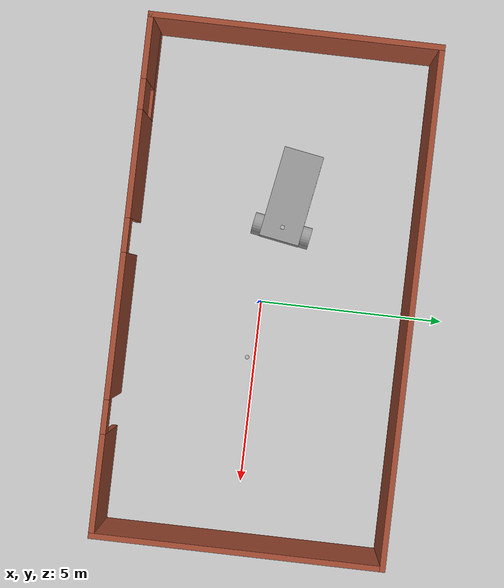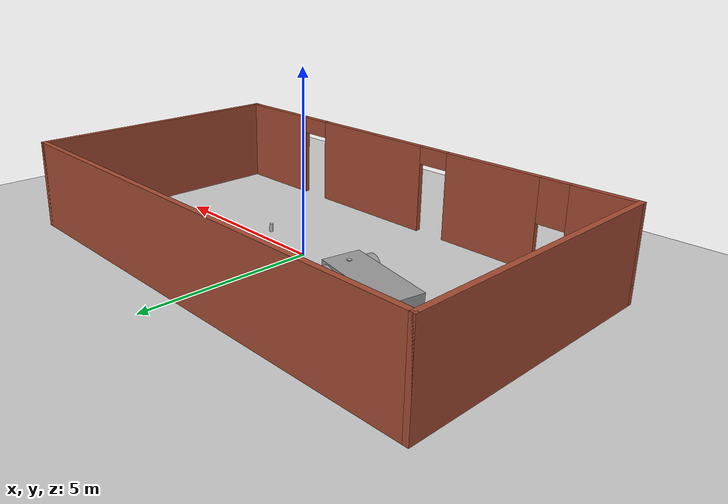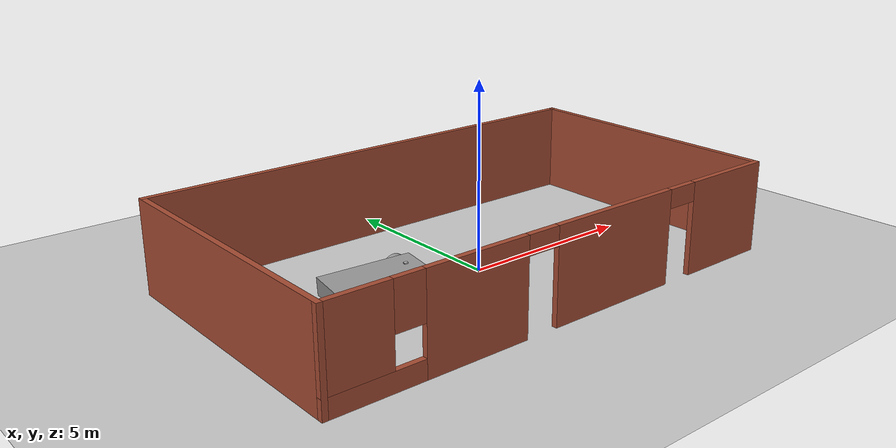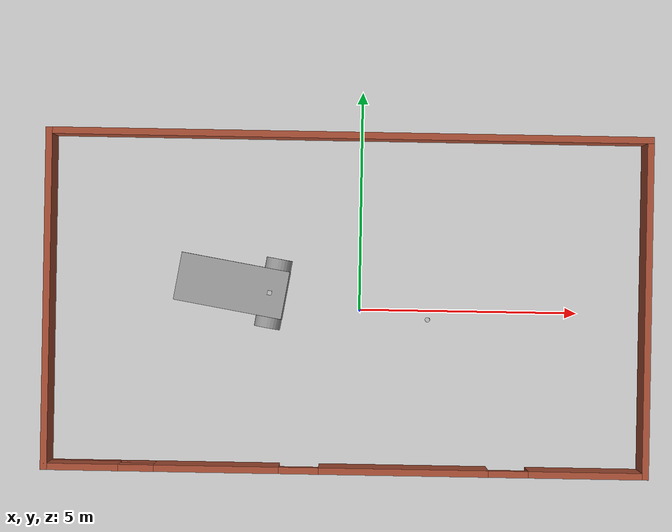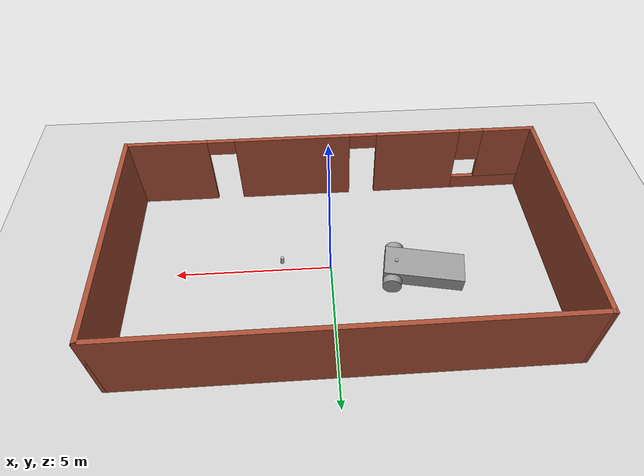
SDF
<sdf version="1.6">
 <world name="default">
  <light name="sun" type="directional">
   <pose>0 0 10 0 -0 0</pose>
   <diffuse>0.8 0.8 0.8 1</diffuse>
   <specular>0.2 0.2 0.2 1</specular>
   <attenuation>
    <range>1000</range>
    <constant>0.9</constant>
    <linear>0.01</linear>
    <quadratic>0.001</quadratic>
   </attenuation>
   <direction>-0.5 0.1 -0.9</direction>
  </light>
  <model name="ground_plane">
   <static>1</static>
   <link name="link">
    <collision name="collision">
     <geometry><plane><normal>0 0 1</normal><size>100 100</size></plane></geometry>
     <surface>
      <contact><collide_bitmask>65535</collide_bitmask></contact>
      <friction><ode><mu>100</mu><mu2>50</mu2></ode></friction>
     </surface>
    </collision>
    <visual name="visual">
     <cast_shadows>0</cast_shadows>
     <geometry><plane><normal>0 0 1</normal><size>100 100</size></plane></geometry>
     <material>
      <script><uri>file://media/materials/scripts/gazebo.material</uri><name>Gazebo/Grey</name></script>
     </material>
    </visual>
   </link>
  </model>
  <gravity>0 0 -9.8</gravity>
  <magnetic_field>6e-06 2.3e-05 -4.2e-05</magnetic_field>
  <atmosphere type="adiabatic"/>
  <physics name="default_physics" default="0" type="ode">
   <max_step_size>0.001</max_step_size>
   <real_time_factor>1</real_time_factor>
   <real_time_update_rate>1000</real_time_update_rate>
  </physics>
  <scene><ambient>0.4 0.4 0.4 1</ambient><background>0.7 0.7 0.7 1</background><shadows>1</shadows></scene>
  <audio><device>default</device></audio>
  <spherical_coordinates>
   <surface_model>EARTH_WGS84</surface_model>
   <latitude_deg>0</latitude_deg>
   <longitude_deg>0</longitude_deg>
   <elevation>0</elevation>
   <heading_deg>0</heading_deg>
  </spherical_coordinates>
  <model name="Hen">
   <model name="Chasis">
    <link name="link_0">
     <inertial>
      <mass>1.32396</mass>
      <inertia>
       <ixx>0.160005</ixx>
       <ixy>0</ixy>
       <ixz>0</ixz>
       <iyy>0.727809</iyy>
       <iyz>0</iyz>
       <izz>0.838287</izz>
      </inertia>
     </inertial>
     <pose>-0.351207 -0.000111 -0.12479 0 -0 0</pose>
     <visual name="visual">
      <geometry><box><size>2.52432 1.10715 0.473758</size></box></geometry>
      <material>
       <lighting>1</lighting>
       <script><uri>file://media/materials/scripts/gazebo.material</uri><name>Gazebo/Grey</name></script>
       <shader type="vertex"><normal_map>__default__</normal_map></shader>
       <ambient>0.3 0.3 0.3 1</ambient>
       <diffuse>0.7 0.7 0.7 1</diffuse>
       <specular>0.01 0.01 0.01 1</specular>
       <emissive>0 0 0 1</emissive>
      </material>
     </visual>
     <collision name="collision">
      <geometry><box><size>2.52432 1.10715 0.473758</size></box></geometry>
      <surface>
       <friction>
        <ode><mu>1</mu><mu2>1</mu2><fdir1>0 0 0</fdir1><slip1>0</slip1><slip2>0</slip2></ode>
        <torsional>
         <coefficient>1</coefficient>
         <patch_radius>0</patch_radius>
         <surface_radius>0</surface_radius>
         <use_patch_radius>1</use_patch_radius>
         <ode><slip>0</slip></ode>
        </torsional>
       </friction>
       <bounce><restitution_coefficient>0</restitution_coefficient><threshold>1e+06</threshold></bounce>
       <contact>
        <collide_without_contact>0</collide_without_contact>
        <collide_without_contact_bitmask>1</collide_without_contact_bitmask>
        <collide_bitmask>1</collide_bitmask>
        <ode>
         <soft_cfm>0</soft_cfm>
         <soft_erp>0.2</soft_erp>
         <kp>1e+13</kp>
         <kd>1</kd>
         <max_vel>0.01</max_vel>
         <min_depth>0</min_depth>
        </ode>
        <bullet>
         <split_impulse>1</split_impulse>
         <split_impulse_penetration_threshold>-0.01</split_impulse_penetration_threshold>
         <soft_cfm>0</soft_cfm>
         <soft_erp>0.2</soft_erp>
         <kp>1e+13</kp>
         <kd>1</kd>
        </bullet>
       </contact>
      </surface>
     </collision>
    </link>
    <link name="link_1">
     <inertial>
      <mass>1</mass>
      <inertia><ixx>0.145833</ixx><ixy>0</ixy><ixz>0</ixz><iyy>0.145833</iyy><iyz>0</iyz><izz>0.125</izz></inertia>
     </inertial>
     <pose>0.610952 -0.678719 -0.22479 1.5707 -0 0</pose>
     <visual name="visual">
      <geometry><cylinder><radius>0.3</radius><length>0.25</length></cylinder></geometry>
      <material>
       <lighting>1</lighting>
       <script><uri>file://media/materials/scripts/gazebo.material</uri><name>Gazebo/Grey</name></script>
       <shader type="vertex"><normal_map>__default__</normal_map></shader>
       <ambient>0.3 0.3 0.3 1</ambient>
       <diffuse>0.7 0.7 0.7 1</diffuse>
       <specular>0.01 0.01 0.01 1</specular>
       <emissive>0 0 0 1</emissive>
      </material>
     </visual>
     <collision name="collision">
      <geometry><cylinder><radius>0.3</radius><length>0.25</length></cylinder></geometry>
      <surface>
       <friction>
        <ode><mu>1</mu><mu2>1</mu2><fdir1>0 0 0</fdir1><slip1>0</slip1><slip2>0</slip2></ode>
        <torsional>
         <coefficient>1</coefficient>
         <patch_radius>0</patch_radius>
         <surface_radius>0</surface_radius>
         <use_patch_radius>1</use_patch_radius>
         <ode><slip>0</slip></ode>
        </torsional>
       </friction>
       <bounce><restitution_coefficient>0</restitution_coefficient><threshold>1e+06</threshold></bounce>
       <contact>
        <collide_without_contact>0</collide_without_contact>
        <collide_without_contact_bitmask>1</collide_without_contact_bitmask>
        <collide_bitmask>1</collide_bitmask>
        <ode>
         <soft_cfm>0</soft_cfm>
         <soft_erp>0.2</soft_erp>
         <kp>1e+13</kp>
         <kd>1</kd>
         <max_vel>0.01</max_vel>
         <min_depth>0</min_depth>
        </ode>
        <bullet>
         <split_impulse>1</split_impulse>
         <split_impulse_penetration_threshold>-0.01</split_impulse_penetration_threshold>
         <soft_cfm>0</soft_cfm>
         <soft_erp>0.2</soft_erp>
         <kp>1e+13</kp>
         <kd>1</kd>
        </bullet>
       </contact>
      </surface>
     </collision>
    </link>
    <link name="link_1_clone">
     <inertial>
      <mass>1</mass>
      <inertia><ixx>0.145833</ixx><ixy>0</ixy><ixz>0</ixz><iyy>0.145833</iyy><iyz>0</iyz><izz>0.125</izz></inertia>
     </inertial>
     <pose>0.610952 0.678497 -0.22479 1.5707 -0 0</pose>
     <visual name="visual">
      <geometry><cylinder><radius>0.3</radius><length>0.25</length></cylinder></geometry>
      <material>
       <lighting>1</lighting>
       <script><uri>file://media/materials/scripts/gazebo.material</uri><name>Gazebo/Grey</name></script>
       <shader type="vertex"><normal_map>__default__</normal_map></shader>
       <ambient>0.3 0.3 0.3 1</ambient>
       <diffuse>0.7 0.7 0.7 1</diffuse>
       <specular>0.01 0.01 0.01 1</specular>
       <emissive>0 0 0 1</emissive>
      </material>
     </visual>
     <collision name="collision">
      <geometry><cylinder><radius>0.3</radius><length>0.25</length></cylinder></geometry>
      <surface>
       <friction>
        <ode><mu>1</mu><mu2>1</mu2><fdir1>0 0 0</fdir1><slip1>0</slip1><slip2>0</slip2></ode>
        <torsional>
         <coefficient>1</coefficient>
         <patch_radius>0</patch_radius>
         <surface_radius>0</surface_radius>
         <use_patch_radius>1</use_patch_radius>
         <ode><slip>0</slip></ode>
        </torsional>
       </friction>
       <bounce><restitution_coefficient>0</restitution_coefficient><threshold>1e+06</threshold></bounce>
       <contact>
        <collide_without_contact>0</collide_without_contact>
        <collide_without_contact_bitmask>1</collide_without_contact_bitmask>
        <collide_bitmask>1</collide_bitmask>
        <ode>
         <soft_cfm>0</soft_cfm>
         <soft_erp>0.2</soft_erp>
         <kp>1e+13</kp>
         <kd>1</kd>
         <max_vel>0.01</max_vel>
         <min_depth>0</min_depth>
        </ode>
        <bullet>
         <split_impulse>1</split_impulse>
         <split_impulse_penetration_threshold>-0.01</split_impulse_penetration_threshold>
         <soft_cfm>0</soft_cfm>
         <soft_erp>0.2</soft_erp>
         <kp>1e+13</kp>
         <kd>1</kd>
        </bullet>
       </contact>
      </surface>
     </collision>
    </link>
    <link name="link_2">
     <inertial>
      <mass>1</mass>
      <inertia><ixx>0.1</ixx><ixy>0</ixy><ixz>0</ixz><iyy>0.1</iyy><iyz>0</iyz><izz>0.1</izz></inertia>
     </inertial>
     <pose>-1.41337 -0.000111 -0.22479 0 -0 0</pose>
     <visual name="visual">
      <geometry><sphere><radius>0.2</radius></sphere></geometry>
      <material>
       <lighting>1</lighting>
       <script><uri>file://media/materials/scripts/gazebo.material</uri><name>Gazebo/Grey</name></script>
       <shader type="vertex"><normal_map>__default__</normal_map></shader>
       <ambient>0.3 0.3 0.3 1</ambient>
       <diffuse>0.7 0.7 0.7 1</diffuse>
       <specular>0.01 0.01 0.01 1</specular>
       <emissive>0 0 0 1</emissive>
      </material>
     </visual>
     <collision name="collision">
      <geometry><sphere><radius>0.2</radius></sphere></geometry>
      <surface>
       <friction>
        <ode><mu>1</mu><mu2>1</mu2><fdir1>0 0 0</fdir1><slip1>0</slip1><slip2>0</slip2></ode>
        <torsional>
         <coefficient>1</coefficient>
         <patch_radius>0</patch_radius>
         <surface_radius>0</surface_radius>
         <use_patch_radius>1</use_patch_radius>
         <ode><slip>0</slip></ode>
        </torsional>
       </friction>
       <bounce><restitution_coefficient>0</restitution_coefficient><threshold>1e+06</threshold></bounce>
       <contact>
        <collide_without_contact>0</collide_without_contact>
        <collide_without_contact_bitmask>1</collide_without_contact_bitmask>
        <collide_bitmask>1</collide_bitmask>
        <ode>
         <soft_cfm>0</soft_cfm>
         <soft_erp>0.2</soft_erp>
         <kp>1e+13</kp>
         <kd>1</kd>
         <max_vel>0.01</max_vel>
         <min_depth>0</min_depth>
        </ode>
        <bullet>
         <split_impulse>1</split_impulse>
         <split_impulse_penetration_threshold>-0.01</split_impulse_penetration_threshold>
         <soft_cfm>0</soft_cfm>
         <soft_erp>0.2</soft_erp>
         <kp>1e+13</kp>
         <kd>1</kd>
        </bullet>
       </contact>
      </surface>
     </collision>
    </link>
    <model name="depth_camera">
     <link name="link">
      <pose>0 0 0.05 0 -0 0</pose>
      <inertial>
       <mass>0.1</mass>
       <inertia>
        <ixx>0.000166667</ixx>
        <iyy>0.000166667</iyy>
        <izz>0.000166667</izz>
        <ixy>0</ixy>
        <ixz>0</ixz>
        <iyz>0</iyz>
       </inertia>
      </inertial>
      <collision name="collision"><geometry><box><size>0.1 0.1 0.1</size></box></geometry></collision>
      <visual name="visual"><geometry><box><size>0.1 0.1 0.1</size></box></geometry></visual>
      <sensor name="camera" type="depth">
       <camera name="__default__">
        <horizontal_fov>1.047</horizontal_fov>
        <image><width>320</width><height>240</height></image>
        <clip><near>0.1</near><far>100</far></clip>
       </camera>
       <always_on>1</always_on>
       <update_rate>30</update_rate>
       <visualize>1</visualize>
      </sensor>
     </link>
     <pose>0.54267 0.000446 0.042223 0 -0 0</pose>
    </model>
    <joint name="link_0_JOINT_0" type="revolute">
     <parent>link_0</parent>
     <child>link_1_clone</child>
     <axis>
      <xyz>0 0 1</xyz>
      <use_parent_model_frame>0</use_parent_model_frame>
      <limit>
       <lower>-1.79769e+308</lower>
       <upper>1.79769e+308</upper>
       <effort>-1</effort>
       <velocity>-1</velocity>
      </limit>
      <dynamics>
       <spring_reference>0</spring_reference>
       <spring_stiffness>0</spring_stiffness>
       <damping>0</damping>
       <friction>0</friction>
      </dynamics>
     </axis>
     <physics>
      <ode><limit><cfm>0</cfm><erp>0.2</erp></limit><suspension><cfm>0</cfm><erp>0.2</erp></suspension></ode>
     </physics>
    </joint>
    <joint name="link_0_JOINT_1" type="revolute">
     <parent>link_0</parent>
     <child>link_1</child>
     <axis>
      <xyz>0 0 1</xyz>
      <use_parent_model_frame>0</use_parent_model_frame>
      <limit>
       <lower>-1.79769e+308</lower>
       <upper>1.79769e+308</upper>
       <effort>-1</effort>
       <velocity>-1</velocity>
      </limit>
      <dynamics>
       <spring_reference>0</spring_reference>
       <spring_stiffness>0</spring_stiffness>
       <damping>0</damping>
       <friction>0</friction>
      </dynamics>
     </axis>
     <physics>
      <ode><limit><cfm>0</cfm><erp>0.2</erp></limit><suspension><cfm>0</cfm><erp>0.2</erp></suspension></ode>
     </physics>
    </joint>
    <joint name="link_0_JOINT_2" type="ball">
     <parent>link_0</parent>
     <child>link_2</child>
     <physics>
      <ode><limit><cfm>0</cfm><erp>0.2</erp></limit><suspension><cfm>0</cfm><erp>0.2</erp></suspension></ode>
     </physics>
    </joint>
    <joint name="link_0_JOINT_3" type="fixed">
     <parent>link_0</parent>
     <child>depth_camera::link</child>
     <physics>
      <ode><limit><cfm>0</cfm><erp>0.2</erp></limit><suspension><cfm>0</cfm><erp>0.2</erp></suspension></ode>
     </physics>
    </joint>
    <static>0</static>
    <plugin name="Follower" filename="libFollowerPlugin.so"/>
    <pose>-2.10219 -0.028924 0.271569 0 -0 0</pose>
   </model>
   <model name="beer">
    <link name="link">
     <pose>0 0 0.115 0 -0 0</pose>
     <inertial>
      <mass>0.39</mass>
      <inertia><ixx>0.00058</ixx><ixy>0</ixy><ixz>0</ixz><iyy>0.00058</iyy><iyz>0</iyz><izz>0.00019</izz></inertia>
     </inertial>
     <collision name="collision">
      <geometry><cylinder><radius>0.055</radius><length>0.23</length></cylinder></geometry>
     </collision>
     <visual name="visual">
      <geometry><cylinder><radius>0.055</radius><length>0.23</length></cylinder></geometry>
      <material>
       <script>
        <uri>model://beer/materials/scripts</uri>
        <uri>model://beer/materials/textures</uri>
        <name>Beer/Diffuse</name>
       </script>
      </material>
     </visual>
    </link>
    <pose>2.10218 0.028924 -0.271569 0 -0 0</pose>
   </model>
   <static>0</static>
   <plugin name="hello.world" filename="libhello_world.so"/>
   <pose>-0.513309 0.124215 0.326965 3e-06 -0.049427 -0.168567</pose>
  </model>
  <model name="Egg">
   <pose>-0.283762 0.163478 0 0 -0 0</pose>
   <link name="Wall_0">
    <collision name="Wall_0_Collision">
     <geometry><box><size>7.75 0.15 2.5</size></box></geometry>
     <pose>0 0 1.25 0 -0 0</pose>
    </collision>
    <visual name="Wall_0_Visual">
     <pose>0 0 1.25 0 -0 0</pose>
     <geometry><box><size>7.75 0.15 2.5</size></box></geometry>
     <material>
      <script><uri>file://media/materials/scripts/gazebo.material</uri><name>Gazebo/Bricks</name></script>
      <ambient>1 0.764706 0.305882 1</ambient>
     </material>
     <meta><layer>0</layer></meta>
    </visual>
    <pose>-6.8 0 0 0 -0 1.5708</pose>
   </link>
   <link name="Wall_1">
    <collision name="Wall_1_Collision">
     <geometry><box><size>13.75 0.15 2.5</size></box></geometry>
     <pose>0 0 1.25 0 -0 0</pose>
    </collision>
    <visual name="Wall_1_Visual">
     <pose>0 0 1.25 0 -0 0</pose>
     <geometry><box><size>13.75 0.15 2.5</size></box></geometry>
     <material>
      <script><uri>file://media/materials/scripts/gazebo.material</uri><name>Gazebo/Bricks</name></script>
      <ambient>1 0.764706 0.305882 1</ambient>
     </material>
     <meta><layer>0</layer></meta>
    </visual>
    <pose>0 3.8 0 0 -0 0</pose>
   </link>
   <link name="Wall_2">
    <collision name="Wall_2_Collision">
     <geometry><box><size>7.75 0.15 2.5</size></box></geometry>
     <pose>0 0 1.25 0 -0 0</pose>
    </collision>
    <visual name="Wall_2_Visual">
     <pose>0 0 1.25 0 -0 0</pose>
     <geometry><box><size>7.75 0.15 2.5</size></box></geometry>
     <material>
      <script><uri>file://media/materials/scripts/gazebo.material</uri><name>Gazebo/Bricks</name></script>
      <ambient>1 0.764706 0.305882 1</ambient>
     </material>
     <meta><layer>0</layer></meta>
    </visual>
    <pose>6.8 0 0 0 -0 -1.5708</pose>
   </link>
   <link name="Wall_3">
    <pose>0 -3.8 0 0 -0 3.14159</pose>
    <visual name="Wall_3_Visual_0">
     <pose>-5.51315 0 1.25 0 -0 0</pose>
     <geometry><box><size>2.7237 0.15 2.5</size></box></geometry>
     <material>
      <script><uri>file://media/materials/scripts/gazebo.material</uri><name>Gazebo/Bricks</name></script>
      <ambient>1 0.764706 0.305882 1</ambient>
     </material>
     <meta><layer>0</layer></meta>
    </visual>
    <collision name="Wall_3_Collision_0">
     <geometry><box><size>2.7237 0.15 2.5</size></box></geometry>
     <pose>-5.51315 0 1.25 0 -0 0</pose>
    </collision>
    <visual name="Wall_3_Visual_1">
     <pose>-1.33041 0 1.25 0 -0 0</pose>
     <geometry><box><size>3.84178 0.15 2.5</size></box></geometry>
     <material>
      <script><uri>file://media/materials/scripts/gazebo.material</uri><name>Gazebo/Bricks</name></script>
      <ambient>1 0.764706 0.305882 1</ambient>
     </material>
     <meta><layer>0</layer></meta>
    </visual>
    <collision name="Wall_3_Collision_1">
     <geometry><box><size>3.84178 0.15 2.5</size></box></geometry>
     <pose>-1.33041 0 1.25 0 -0 0</pose>
    </collision>
    <visual name="Wall_3_Visual_2">
     <pose>2.90436 0 1.25 0 -0 0</pose>
     <geometry><box><size>2.82777 0.15 2.5</size></box></geometry>
     <material>
      <script><uri>file://media/materials/scripts/gazebo.material</uri><name>Gazebo/Bricks</name></script>
      <ambient>1 0.764706 0.305882 1</ambient>
     </material>
     <meta><layer>0</layer></meta>
    </visual>
    <collision name="Wall_3_Collision_2">
     <geometry><box><size>2.82777 0.15 2.5</size></box></geometry>
     <pose>2.90436 0 1.25 0 -0 0</pose>
    </collision>
    <visual name="Wall_3_Visual_3">
     <pose>5.59662 0 0.25 0 -0 0</pose>
     <geometry><box><size>2.55675 0.15 0.5</size></box></geometry>
     <material>
      <script><uri>file://media/materials/scripts/gazebo.material</uri><name>Gazebo/Bricks</name></script>
      <ambient>1 0.764706 0.305882 1</ambient>
     </material>
     <meta><layer>0</layer></meta>
    </visual>
    <collision name="Wall_3_Collision_3">
     <geometry><box><size>2.55675 0.15 0.5</size></box></geometry>
     <pose>5.59662 0 0.25 0 -0 0</pose>
    </collision>
    <visual name="Wall_3_Visual_4">
     <pose>5.99662 0 1.5 0 -0 0</pose>
     <geometry><box><size>1.75676 0.15 2</size></box></geometry>
     <material>
      <script><uri>file://media/materials/scripts/gazebo.material</uri><name>Gazebo/Bricks</name></script>
      <ambient>1 0.764706 0.305882 1</ambient>
     </material>
     <meta><layer>0</layer></meta>
    </visual>
    <collision name="Wall_3_Collision_4">
     <geometry><box><size>1.75676 0.15 2</size></box></geometry>
     <pose>5.99662 0 1.5 0 -0 0</pose>
    </collision>
    <visual name="Wall_3_Visual_5">
     <pose>4.71824 0 1.9 0 -0 0</pose>
     <geometry><box><size>0.8 0.15 1.2</size></box></geometry>
     <material>
      <script><uri>file://media/materials/scripts/gazebo.material</uri><name>Gazebo/Bricks</name></script>
      <ambient>1 0.764706 0.305882 1</ambient>
     </material>
     <meta><layer>0</layer></meta>
    </visual>
    <collision name="Wall_3_Collision_5">
     <geometry><box><size>0.8 0.15 1.2</size></box></geometry>
     <pose>4.71824 0 1.9 0 -0 0</pose>
    </collision>
    <visual name="Wall_3_Visual_6">
     <pose>-3.7013 0 2.25 0 -0 0</pose>
     <geometry><box><size>0.9 0.15 0.5</size></box></geometry>
     <material>
      <script><uri>file://media/materials/scripts/gazebo.material</uri><name>Gazebo/Bricks</name></script>
      <ambient>1 0.764706 0.305882 1</ambient>
     </material>
     <meta><layer>0</layer></meta>
    </visual>
    <collision name="Wall_3_Collision_6">
     <geometry><box><size>0.9 0.15 0.5</size></box></geometry>
     <pose>-3.7013 0 2.25 0 -0 0</pose>
    </collision>
    <visual name="Wall_3_Visual_7">
     <pose>1.04048 0 2.25 0 -0 0</pose>
     <geometry><box><size>0.9 0.15 0.5</size></box></geometry>
     <material>
      <script><uri>file://media/materials/scripts/gazebo.material</uri><name>Gazebo/Bricks</name></script>
      <ambient>1 0.764706 0.305882 1</ambient>
     </material>
     <meta><layer>0</layer></meta>
    </visual>
    <collision name="Wall_3_Collision_7">
     <geometry><box><size>0.9 0.15 0.5</size></box></geometry>
     <pose>1.04048 0 2.25 0 -0 0</pose>
    </collision>
   </link>
   <static>1</static>
  </model>
 </world>
</sdf>
